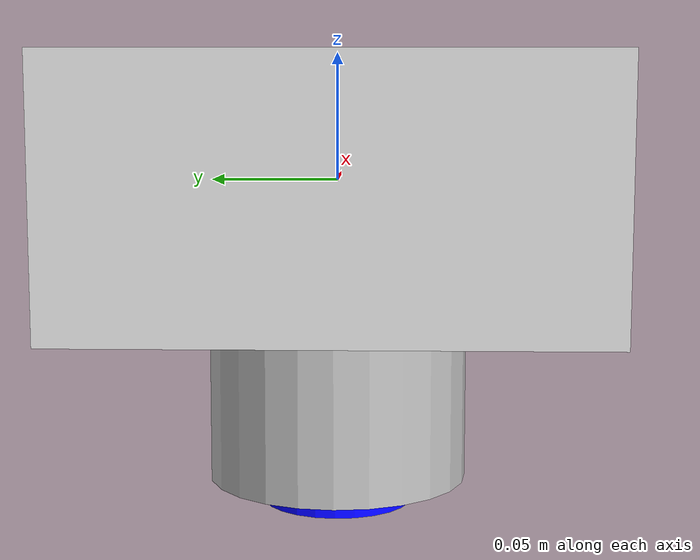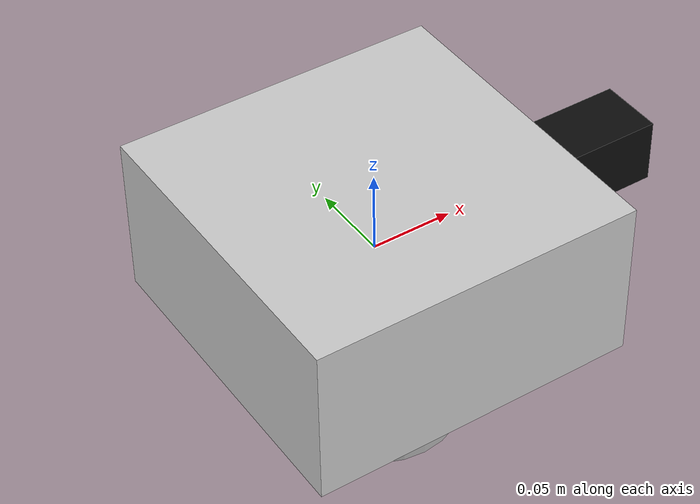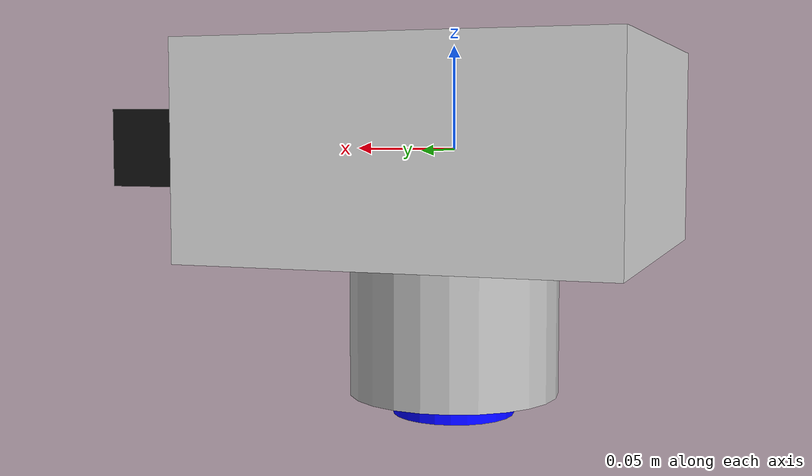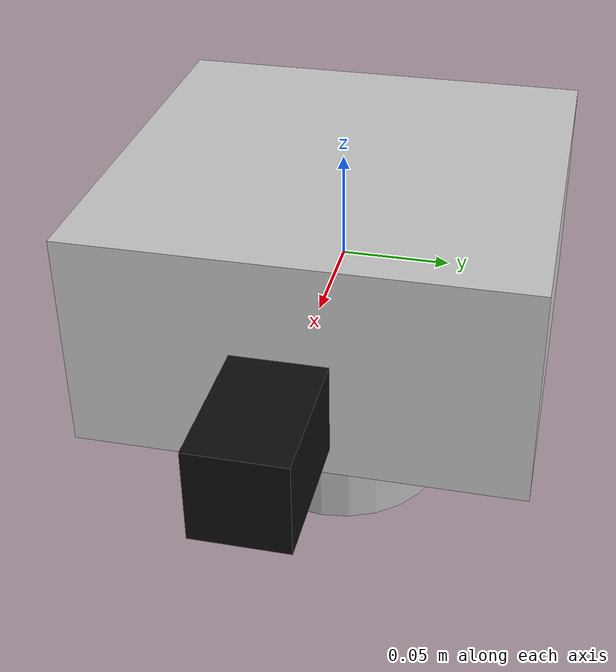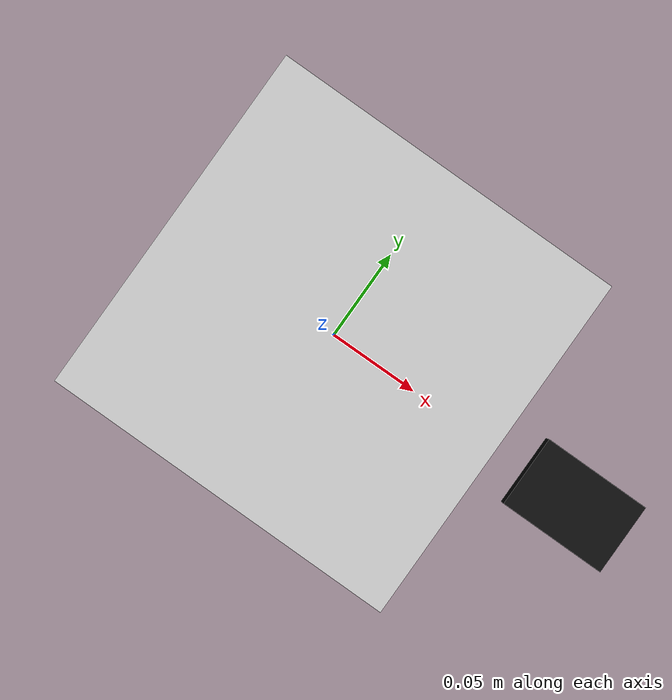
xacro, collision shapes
<?xml version="1.0"?>
<robot xmlns:xacro="http://www.ros.org/wiki/xacro" name="robot">

    <!-- 传入参数 (只保留config文件中有的参数) -->
    <xacro:arg name="sensor_type" default="vlp16"/>
    <xacro:arg name="parent_link" default="base_link"/>
    <xacro:arg name="topic_name" default="/velodyne_points"/>
    <xacro:arg name="frame_id" default="velodyne"/>

    <!-- 云台和雷达的相对位置(固定值，写死在这里) -->
    <xacro:property name="gimbal_x" value="0.0"/>
    <xacro:property name="gimbal_y" value="0.0"/>
    <xacro:property name="gimbal_z" value="0.0 "/>  <!-- 云台在飞行器底部 -->
    <xacro:property name="gimbal_radius" value="0.02"/>  <!-- 减小球形基座半径 -->

    <xacro:property name="lidar_x" value="0.0"/>
    <xacro:property name="lidar_y" value="0.0"/>
    <xacro:property name="lidar_z" value="-0.1"/>  <!-- 雷达在云台下方 -->
    <xacro:property name="lidar_roll" value="0.0"/>
    <xacro:property name="lidar_pitch" value="0.0"/>
    <xacro:property name="lidar_yaw" value="0.0"/>

    <!-- 相机在云台俯仰臂上的相对位姿（前方、默认下俯） -->
    <xacro:property name="camera_x" value="0.15"/>
    <xacro:property name="camera_y" value="0.0"/>
    <xacro:property name="camera_z" value="0.0"/>
    <xacro:property name="camera_roll" value="0.0"/>
    <!-- 约 -20 度下俯 -->
    <xacro:property name="camera_pitch" value="-0.3491"/>
    <xacro:property name="camera_yaw" value="0.0"/>

    <!-- 包含基础机器人 -->
    <xacro:include filename="$(find env_gazebo)/urdf/chassis.urdf.xacro"/>

    <!-- 球形云台基座 (yaw轴) -->
    <link name="gimbal_base_link">
        <visual>
            <geometry>
                <sphere radius="${gimbal_radius}"/>
            </geometry>
            <material name="gray">
                <color rgba="0.5 0.5 0.5 1"/>
            </material>
        </visual>
        <collision>
            <geometry>
                <sphere radius="${gimbal_radius}"/>
            </geometry>
        </collision>
        <inertial>
            <mass value="0.2"/>
            <inertia ixx="0.001" ixy="0" ixz="0" iyy="0.001" iyz="0" izz="0.001"/>
        </inertial>
        <gravity>0</gravity>  <!-- 禁用重力 -->
    </link>

    <!-- 云台yaw关节 (绕Z轴旋转，可360度) -->
    <joint name="gimbal_yaw_joint" type="revolute">
        <parent link="$(arg parent_link)"/>
        <child link="gimbal_base_link"/>
        <origin xyz="${gimbal_x} ${gimbal_y} ${gimbal_z}" rpy="0 0 0"/>
        <axis xyz="0 0 1"/>
        <limit lower="-3.14159" upper="3.14159" effort="10" velocity="1.0"/>
    </joint>

    <!-- 云台俯仰臂 (pitch轴) -->
    <link name="gimbal_pitch_link">
        <visual>
            <geometry>
                <cylinder radius="0.01" length="0.03"/>  <!-- 减小圆柱体尺寸 -->
            </geometry>
            <material name="darkgray">
                <color rgba="0.3 0.3 0.3 1"/>
            </material>
        </visual>
        <collision>
            <geometry>
                <cylinder radius="0.01" length="0.03"/>  <!-- 减小圆柱体尺寸 -->
            </geometry>
        </collision>
        <inertial>
            <mass value="0.1"/>
            <inertia ixx="0.0005" ixy="0" ixz="0" iyy="0.0005" iyz="0" izz="0.0005"/>
        </inertial>
        <gravity>0</gravity>  <!-- 禁用重力 -->
    </link>

    <!-- 云台pitch关节 (绕Y轴旋转，可±90度) -->
    <joint name="gimbal_pitch_joint" type="revolute">
        <parent link="gimbal_base_link"/>
        <child link="gimbal_pitch_link"/>
        <origin xyz="0 0 -${gimbal_radius}" rpy="0 0 0"/>
        <axis xyz="0 1 0"/>
        <limit lower="-1.57" upper="1.57" effort="10" velocity="1.0"/>
    </joint>

    <!-- 雷达安装链接 -->
    <link name="roLIDAR_Link">
        <visual>
            <geometry>
                <cylinder radius="0.04" length="0.05"/>
            </geometry>
            <material name="blue">
                <color rgba="0 0 1 1"/>
            </material>
        </visual>
        <collision>
            <geometry>
                <cylinder radius="0.03" length="0.02"/>
            </geometry>
        </collision>
        <inertial>
            <mass value="0.05"/>
            <inertia ixx="0.0001" ixy="0" ixz="0" iyy="0.0001" iyz="0" izz="0.0001"/>
        </inertial>
        <gravity>0</gravity>  <!-- 禁用重力 -->
    </link>

    <!-- 雷达安装关节 (固定在云台pitch臂上) -->
    <joint name="roLIDAR_joint" type="fixed">
        <parent link="gimbal_pitch_link"/>
        <child link="roLIDAR_Link"/>
        <origin xyz="${lidar_x} ${lidar_y} ${lidar_z}"
                rpy="${lidar_roll} ${lidar_pitch} ${lidar_yaw}"/>
    </joint>

    <!-- 云台相机机身 link（随 pitch 关节俯仰），默认朝前并下俯 -->
    <link name="gimbal_camera_link">
        <visual>
            <geometry>
                <!-- 简单矩形体表示相机本体 -->
                <box size="0.06 0.04 0.04"/>
            </geometry>
            <material name="black">
                <color rgba="0.05 0.05 0.05 1"/>
            </material>
        </visual>
        <collision>
            <geometry>
                <box size="0.06 0.04 0.04"/>
            </geometry>
        </collision>
        <inertial>
            <mass value="0.08"/>
            <inertia ixx="0.0002" ixy="0" ixz="0" iyy="0.0002" iyz="0" izz="0.0002"/>
        </inertial>
        <gravity>0</gravity>
    </link>

    <!-- 相机安装在机体前方，可独立俯仰调节 -->
    <joint name="gimbal_camera_joint" type="revolute">
        <parent link="base_link"/>
        <child link="gimbal_camera_link"/>
        <origin xyz="${camera_x} ${camera_y} ${camera_z}" rpy="${camera_roll} 0 ${camera_yaw}"/>
        <axis xyz="0 1 0"/>
        <limit lower="-1.57" upper="1.57" effort="5" velocity="1.0"/>
    </joint>

    <!-- 可选：光学坐标系（z 前、x 右、y 下），便于与 ROS 相机规范一致 -->
    <link name="gimbal_camera_optical_frame">
        <inertial>
            <mass value="0.0001"/>
            <inertia ixx="1e-7" ixy="0" ixz="0" iyy="1e-7" iyz="0" izz="1e-7"/>
        </inertial>
        <gravity>0</gravity>
    </link>
    <!-- 旋转到 ROS 光学坐标：从机身坐标（x 前 y 左 z 上）到光学（z 前 x 右 y 下）：R = Rz(-90) * Ry(-90) -->
    <joint name="gimbal_camera_optical_joint" type="fixed">
        <parent link="gimbal_camera_link"/>
        <child link="gimbal_camera_optical_frame"/>
        <origin xyz="0 0 0" rpy="0 -1.5708 -1.5708"/>
    </joint>

    <!-- 禁用所有组件的重力 -->
    <gazebo reference="gimbal_base_link">
        <gravity>false</gravity>
    </gazebo>

    <gazebo reference="gimbal_pitch_link">
        <gravity>false</gravity>
    </gazebo>

    <gazebo reference="roLIDAR_Link">
        <gravity>false</gravity>
    </gazebo>

    <gazebo reference="gimbal_camera_link">
        <gravity>false</gravity>
    </gazebo>

    <gazebo reference="gimbal_camera_optical_frame">
        <gravity>false</gravity>
    </gazebo>

    <!-- Gazebo 插件：发布关节状态 -->
    <gazebo>
        <plugin name="gazebo_ros_joint_state_publisher" filename="libgazebo_ros_joint_state_publisher.so">
    <!-- Gazebo 相机传感器与 ROS 插件（挂在 gimbal_camera_link 上） -->
    <gazebo reference="gimbal_camera_link">
        <sensor type="camera" name="gimbal_camera_sensor">
            <update_rate>30</update_rate>
            <visualize>true</visualize>
            <camera name="gimbal_camera">
                <horizontal_fov>1.0472</horizontal_fov> <!-- ~60 deg -->
                <image>
                    <width>640</width>
                    <height>480</height>
                    <format>R8G8B8</format>
                </image>
                <clip>
                    <near>0.05</near>
                    <far>100.0</far>
                </clip>
            </camera>
            <plugin name="gimbal_camera_controller" filename="libgazebo_ros_camera.so">
                <alwaysOn>true</alwaysOn>
                <updateRate>30.0</updateRate>
                <cameraName>gimbal_camera</cameraName>
                <imageTopicName>image_raw</imageTopicName>
                <cameraInfoTopicName>camera_info</cameraInfoTopicName>
                <frameName>gimbal_camera_optical_frame</frameName>
            </plugin>
        </sensor>
    </gazebo>

            <robotNamespace>/</robotNamespace>
            <jointName>gimbal_yaw_joint, gimbal_pitch_joint</jointName>
            <updateRate>50.0</updateRate>
            <alwaysOn>true</alwaysOn>
        </plugin>
    </gazebo>

    <!-- Gazebo 控制插件 -->
    <gazebo>
        <plugin name="gazebo_ros_control" filename="libgazebo_ros_control.so">
            <robotNamespace>/</robotNamespace>
        </plugin>
    </gazebo>

    <!-- 云台yaw关节传动 -->
    <transmission name="gimbal_yaw_trans">
        <type>transmission_interface/SimpleTransmission</type>
        <joint name="gimbal_yaw_joint">
            <hardwareInterface>hardware_interface/EffortJointInterface</hardwareInterface>
        </joint>
        <actuator name="gimbal_yaw_motor">
            <hardwareInterface>hardware_interface/EffortJointInterface</hardwareInterface>
            <mechanicalReduction>1</mechanicalReduction>
        </actuator>
    </transmission>

    <!-- 云台pitch关节传动 -->
    <transmission name="gimbal_pitch_trans">
        <type>transmission_interface/SimpleTransmission</type>
        <joint name="gimbal_pitch_joint">
            <hardwareInterface>hardware_interface/EffortJointInterface</hardwareInterface>
        </joint>
        <actuator name="gimbal_pitch_motor">
            <hardwareInterface>hardware_interface/EffortJointInterface</hardwareInterface>
            <mechanicalReduction>1</mechanicalReduction>
        </actuator>
    </transmission>

    <!-- 根据传感器类型包含对应的雷达传感器 -->
    <xacro:property name="sensor_type_val" value="$(arg sensor_type)"/>

    <xacro:if value="${sensor_type_val == 'vlp16'}">
        <xacro:include filename="$(find env_gazebo)/urdf/sensor_VLP16.xacro"/>
    </xacro:if>

    <xacro:if value="${sensor_type_val == 'hdl32e'}">
        <xacro:include filename="$(find env_gazebo)/urdf/sensor_HDL32E.xacro"/>
    </xacro:if>

    <!-- 禁用雷达链接的重力 -->
    <gazebo reference="velodyne_base_link">
        <gravity>false</gravity>
    </gazebo>

    <gazebo reference="velodyne">
        <gravity>false</gravity>
    </gazebo>

</robot>

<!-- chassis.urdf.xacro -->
<robot xmlns:xacro="http://www.ros.org/wiki/xacro" name="base_robot">

    <!-- 基础机器人链接 -->
    <link name="base_link">
        <visual>
            <geometry>
                <box size="0.2 0.2 0.1"/>
            </geometry>
            <material name="white">
                <color rgba="0.8 0.8 0.8 1"/>
            </material>
        </visual>
        <collision>
            <geometry>
                <box size="0.2 0.2 0.1"/>
            </geometry>
        </collision>
        <inertial>
            <mass value="50.0"/>  <!-- 大幅增加质量防止反作用力 -->
            <inertia ixx="4.17" ixy="0" ixz="0" iyy="4.17" iyz="0" izz="4.17"/>  <!-- 相应增加惯性矩 -->
        </inertial>
    </link>

    <!-- 前方标记 - 在正方体上方 -->
    <link name="front_marker">
        <visual>
            <geometry>
                <box size="0.1 0.02 0.02"/>  <!-- 一个细长的红色条作为前方标记 -->
            </geometry>
            <material name="red">
                <color rgba="1 0 0 1"/>
            </material>
        </visual>
        <!-- 禁用碰撞检测 -->
        <inertial>
            <mass value="0.01"/>
            <inertia ixx="0.0001" ixy="0" ixz="0" iyy="0.0001" iyz="0" izz="0.0001"/>
        </inertial>
    </link>

    <!-- 固定前方标记到机体上方 -->
    <joint name="front_marker_joint" type="fixed">
        <parent link="base_link"/>
        <child link="front_marker"/>
        <origin xyz="0.05 0 0.06" rpy="0 0 0"/>  <!-- 在机体上方，稍微偏前 -->
    </joint>

    <!-- 禁用重力和碰撞 -->
    <gazebo reference="base_link">
        <gravity>false</gravity>
        <material>Gazebo/Grey</material>
        <!-- 增加阻尼来稳定机体 -->
        <dampingFactor>0.5</dampingFactor>
        <collision>
            <surface>
                <contact>
                    <ode>
                        <kp>0</kp>
                        <kd>0</kd>
                    </ode>
                </contact>
            </surface>
        </collision>
    </gazebo>

    <gazebo reference="front_marker">
        <gravity>false</gravity>
        <material>Gazebo/Red</material>
        <collision>
            <surface>
                <contact>
                    <ode>
                        <kp>0</kp>
                        <kd>0</kd>
                    </ode>
                </contact>
            </surface>
        </collision>
    </gazebo>

</robot>

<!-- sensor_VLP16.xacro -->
<robot xmlns:xacro="http://www.ros.org/wiki/xacro">

    <xacro:property name="gpu" value="true" />
    <xacro:property name="organize_cloud" value="false" />
    <xacro:include filename="$(find velodyne_description)/urdf/VLP-16.urdf.xacro" />

    <xacro:VLP-16 parent="roLIDAR_Link" name="velodyne" topic="/velodyne_points"
        organize_cloud="${organize_cloud}" hz="10" lasers="16" samples="100" min_range="0.95"
        max_range="50.0" gpu="${gpu}">
        <origin xyz="0 0 0" rpy="0 0 0" />
    </xacro:VLP-16>

</robot>

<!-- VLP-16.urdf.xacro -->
<robot xmlns:xacro="http://www.ros.org/wiki/xacro" name="VLP-16">
  <xacro:property name="M_PI" value="3.1415926535897931" />
  <xacro:macro name="VLP-16" params="*origin is_sim:=true parent:=base_link name:=velodyne tf_prefix:='' topic:=/velodyne_points organize_cloud:=false hz:=10 lasers:=16 samples:=1875 collision_range:=0.3 min_range:=0.0 max_range:=100.0 noise:=0.008 min_angle:=-${M_PI} max_angle:=${M_PI} gpu:=false">

    <joint name="${name}_base_mount_joint" type="fixed">
      <xacro:insert_block name="origin" />
      <parent link="${parent}"/>
      <child link="${name}_base_link"/>
    </joint>

    <link name="${name}_base_link">
      <inertial>
        <mass value="0.83"/>
        <origin xyz="0 0 0.03585"/>
        <inertia ixx="${(0.83 * (3.0*0.0516*0.0516 + 0.0717*0.0717)) / 12.0}" ixy="0" ixz="0"
          iyy="${(0.83 * (3.0*0.0516*0.0516 + 0.0717*0.0717)) / 12.0}" iyz="0"
          izz="${0.5 * 0.83 * (0.0516*0.0516)}"/>
      </inertial>
      <visual>
        <geometry>
          <mesh filename="package://velodyne_description/meshes/VLP16_base_1.dae" />
        </geometry>
      </visual>
      <visual>
        <geometry>
          <mesh filename="package://velodyne_description/meshes/VLP16_base_2.dae" />
        </geometry>
      </visual>
      <collision>
        <origin rpy="0 0 0" xyz="0 0 0.03585"/>
        <geometry>
          <cylinder radius="0.0516" length="0.0717"/>
        </geometry>
      </collision>
    </link>

    <joint name="${name}_base_scan_joint" type="fixed" >
      <origin xyz="0 0 0.0377" rpy="0 0 0" />
      <parent link="${name}_base_link" />
      <child link="${name}"/>
    </joint>

    <link name="${name}">
      <inertial>
        <mass value="0.01"/>
        <origin xyz="0 0 0"/>
        <inertia ixx="1e-7" ixy="0" ixz="0" iyy="1e-7" iyz="0" izz="1e-7"/>
      </inertial>
      <visual>
        <origin xyz="0 0 -0.0377" />
        <geometry>
          <mesh filename="package://velodyne_description/meshes/VLP16_scan.dae" />
        </geometry>
      </visual>
      <collision>
        <geometry>
          <sphere radius="0"/>
        </geometry>
      </collision>
    </link>

    <!-- Gazebo requires the velodyne_gazebo_plugins package -->
    <xacro:if value="${is_sim}">
        <gazebo reference="${name}">
            <xacro:if value="${gpu}">
                <sensor type="gpu_ray" name="${name}-VLP16">
                <pose>0 0 0 0 0 0</pose>
                <visualize>false</visualize>
                <update_rate>${hz}</update_rate>
                <ray>
                    <scan>
                    <horizontal>
                        <samples>${samples}</samples>
                        <resolution>1</resolution>
                        <min_angle>${min_angle}</min_angle>
                        <max_angle>${max_angle}</max_angle>
                    </horizontal>
                    <vertical>
                        <samples>${lasers}</samples>
                        <resolution>1</resolution>
                        <min_angle>-${15.0*M_PI/180.0}</min_angle>
                        <max_angle> ${15.0*M_PI/180.0}</max_angle>
                    </vertical>
                    </scan>
                    <range>
                    <min>${collision_range}</min>
                    <max>${max_range+1}</max>
                    <resolution>0.001</resolution>
                    </range>
                    <noise>
                    <type>gaussian</type>
                    <mean>0.0</mean>
                    <stddev>0.0</stddev>
                    </noise>
                </ray>
                <plugin name="gazebo_ros_laser_controller" filename="libgazebo_ros_velodyne_laser.so">
                    <ros>
                    <namespace>/${name}</namespace>
                    <remapping>~/out:=${topic}</remapping>
                    </ros>
                    <tf_prefix>${tf_prefix}</tf_prefix>
                    <frame_name>${name}</frame_name>
                    <organize_cloud>${organize_cloud}</organize_cloud>
                    <min_range>${min_range}</min_range>
                    <max_range>${max_range}</max_range>
                    <gaussian_noise>${noise}</gaussian_noise>
                </plugin>
                </sensor>
            </xacro:if>
            <xacro:unless value="${gpu}">
                <sensor type="ray" name="${name}-VLP16">
                <pose>0 0 0 0 0 0</pose>
                <visualize>false</visualize>
                <update_rate>${hz}</update_rate>
                <ray>
                    <scan>
                    <horizontal>
                        <samples>${samples}</samples>
                        <resolution>1</resolution>
                        <min_angle>${min_angle}</min_angle>
                        <max_angle>${max_angle}</max_angle>
                    </horizontal>
                    <vertical>
                        <samples>${lasers}</samples>
                        <resolution>1</resolution>
                        <min_angle>-${15.0*M_PI/180.0}</min_angle>
                        <max_angle> ${15.0*M_PI/180.0}</max_angle>
                    </vertical>
                    </scan>
                    <range>
                    <min>${collision_range}</min>
                    <max>${max_range+1}</max>
                    <resolution>0.001</resolution>
                    </range>
                    <noise>
                    <type>gaussian</type>
                    <mean>0.0</mean>
                    <stddev>0.0</stddev>
                    </noise>
                </ray>
                <plugin name="gazebo_ros_laser_controller" filename="libgazebo_ros_velodyne_laser.so">
                    <ros>
                    <namespace>/${name}</namespace>
                    <remapping>~/out:=${topic}</remapping>
                    </ros>
                    <tf_prefix>${tf_prefix}</tf_prefix>
                    <frame_name>${name}</frame_name>
                    <organize_cloud>${organize_cloud}</organize_cloud>
                    <min_range>${min_range}</min_range>
                    <max_range>${max_range}</max_range>
                    <gaussian_noise>${noise}</gaussian_noise>
                </plugin>
                </sensor>
            </xacro:unless>
        </gazebo>
    </xacro:if>

  </xacro:macro>
</robot>
